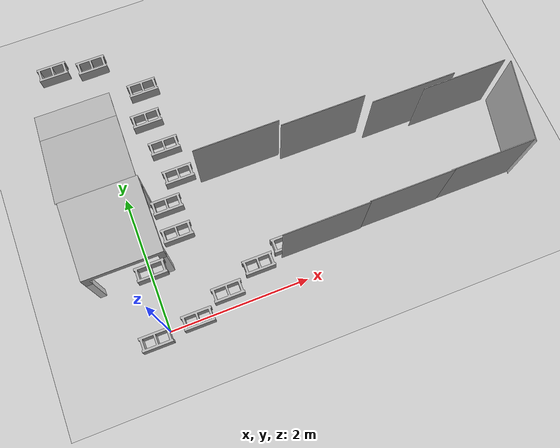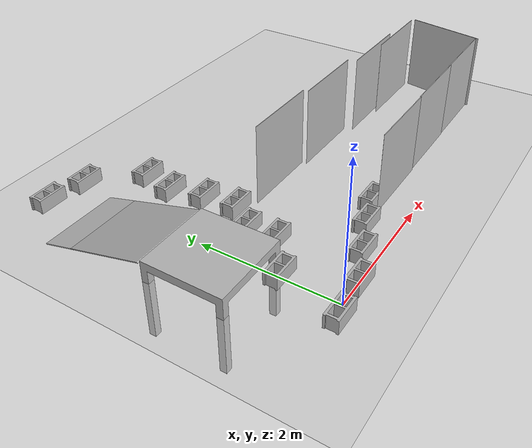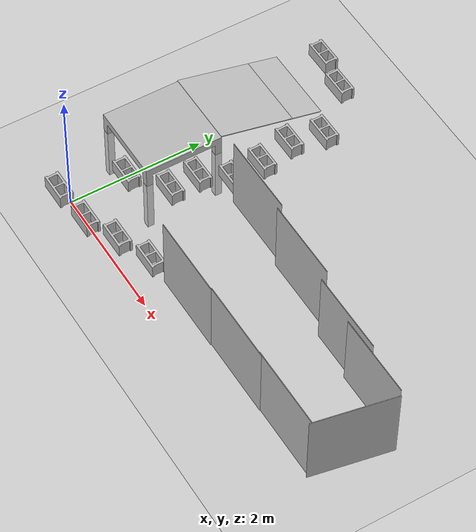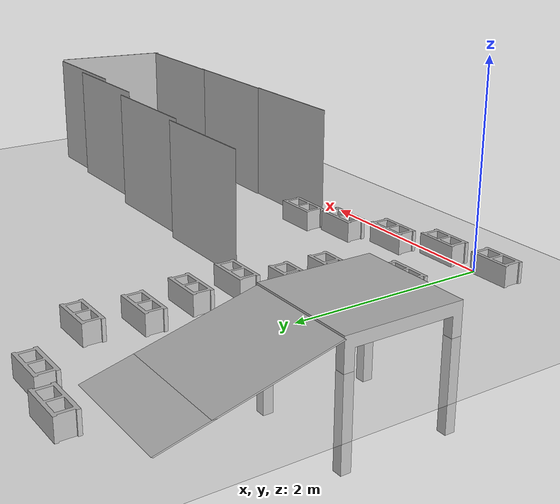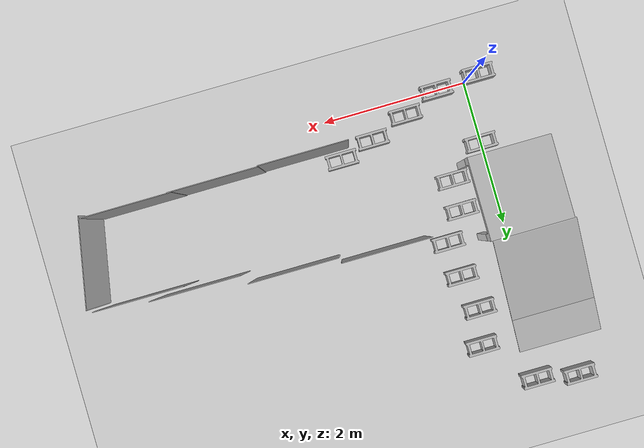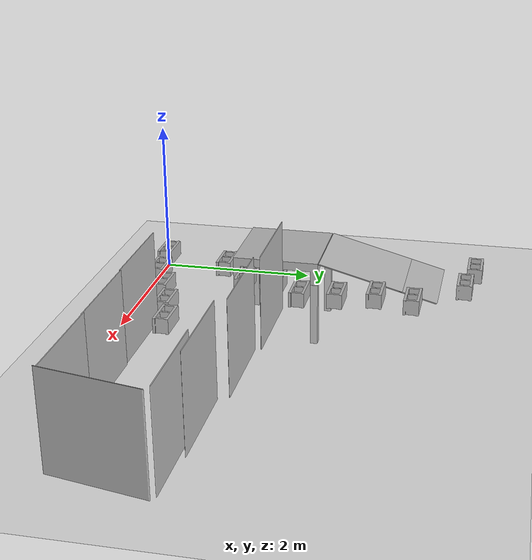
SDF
<sdf version="1.6">
 <world name="default">
  <model name="ground_plane">
   <static>1</static>
   <link name="link">
    <collision name="collision">
     <geometry><plane><normal>0 0 1</normal><size>100 100</size></plane></geometry>
     <surface><friction><ode><mu>100</mu><mu2>50</mu2></ode></friction></surface>
    </collision>
    <visual name="visual">
     <cast_shadows>0</cast_shadows>
     <geometry><plane><normal>0 0 1</normal><size>100 100</size></plane></geometry>
     <material>
      <script><uri>file://media/materials/scripts/gazebo.material</uri><name>Gazebo/Grey</name></script>
     </material>
    </visual>
   </link>
  </model>
  <model name="cinder_block_2">
   <link name="link">
    <inertial>
     <pose>0 0 0.1016 0 -0 0</pose>
     <mass>5</mass>
     <inertia>
      <ixx>0.028705</ixx>
      <ixy>0</ixy>
      <iyy>0.073708</iyy>
      <ixz>0</ixz>
      <iyz>0</iyz>
      <izz>0.06908</izz>
     </inertia>
    </inertial>
    <visual name="visual">
     <geometry><mesh><uri>model://cinder_block/meshes/cinder_block.dae</uri></mesh></geometry>
    </visual>
    <collision name="left">
     <pose>0 -0.08465 0.1016 0 -0 0</pose>
     <geometry><box><size>0.43495 0.0339 0.2032</size></box></geometry>
     <surface>
      <contact><ode><max_vel>0.1</max_vel><min_depth>0.001</min_depth></ode></contact>
      <friction><ode><mu>1</mu><mu2>1</mu2></ode></friction>
     </surface>
    </collision>
    <collision name="right">
     <pose>0 0.08465 0.1016 0 -0 0</pose>
     <geometry><box><size>0.43495 0.0339 0.2032</size></box></geometry>
     <surface>
      <contact><ode><max_vel>0.1</max_vel><min_depth>0.001</min_depth></ode></contact>
      <friction><ode><mu>1</mu><mu2>1</mu2></ode></friction>
     </surface>
    </collision>
    <collision name="front">
     <pose>0.18625 0 0.1016 0 -0 0</pose>
     <geometry><box><size>0.0339 0.1354 0.203</size></box></geometry>
     <surface>
      <contact><ode><max_vel>0.1</max_vel><min_depth>0.001</min_depth></ode></contact>
      <friction><ode><mu>1</mu><mu2>1</mu2></ode></friction>
     </surface>
    </collision>
    <collision name="middle">
     <pose>0 0 0.1016 0 -0 0</pose>
     <geometry><box><size>0.0339 0.1354 0.203</size></box></geometry>
     <surface>
      <contact><ode><max_vel>0.1</max_vel><min_depth>0.001</min_depth></ode></contact>
      <friction><ode><mu>1</mu><mu2>1</mu2></ode></friction>
     </surface>
    </collision>
    <collision name="back">
     <pose>-0.18625 0 0.1016 0 -0 0</pose>
     <geometry><box><size>0.0339 0.1354 0.203</size></box></geometry>
     <surface>
      <contact><ode><max_vel>0.1</max_vel><min_depth>0.001</min_depth></ode></contact>
      <friction><ode><mu>1</mu><mu2>1</mu2></ode></friction>
     </surface>
    </collision>
   </link>
   <pose>-0.201857 -0.063064 -6e-06 -1e-06 2.9e-05 0</pose>
  </model>
  <model name="cinder_block_3">
   <link name="link">
    <inertial>
     <pose>0 0 0.1016 0 -0 0</pose>
     <mass>5</mass>
     <inertia>
      <ixx>0.028705</ixx>
      <ixy>0</ixy>
      <iyy>0.073708</iyy>
      <ixz>0</ixz>
      <iyz>0</iyz>
      <izz>0.06908</izz>
     </inertia>
    </inertial>
    <visual name="visual">
     <geometry><mesh><uri>model://cinder_block/meshes/cinder_block.dae</uri></mesh></geometry>
    </visual>
    <collision name="left">
     <pose>0 -0.08465 0.1016 0 -0 0</pose>
     <geometry><box><size>0.43495 0.0339 0.2032</size></box></geometry>
     <surface>
      <contact><ode><max_vel>0.1</max_vel><min_depth>0.001</min_depth></ode></contact>
      <friction><ode><mu>1</mu><mu2>1</mu2></ode></friction>
     </surface>
    </collision>
    <collision name="right">
     <pose>0 0.08465 0.1016 0 -0 0</pose>
     <geometry><box><size>0.43495 0.0339 0.2032</size></box></geometry>
     <surface>
      <contact><ode><max_vel>0.1</max_vel><min_depth>0.001</min_depth></ode></contact>
      <friction><ode><mu>1</mu><mu2>1</mu2></ode></friction>
     </surface>
    </collision>
    <collision name="front">
     <pose>0.18625 0 0.1016 0 -0 0</pose>
     <geometry><box><size>0.0339 0.1354 0.203</size></box></geometry>
     <surface>
      <contact><ode><max_vel>0.1</max_vel><min_depth>0.001</min_depth></ode></contact>
      <friction><ode><mu>1</mu><mu2>1</mu2></ode></friction>
     </surface>
    </collision>
    <collision name="middle">
     <pose>0 0 0.1016 0 -0 0</pose>
     <geometry><box><size>0.0339 0.1354 0.203</size></box></geometry>
     <surface>
      <contact><ode><max_vel>0.1</max_vel><min_depth>0.001</min_depth></ode></contact>
      <friction><ode><mu>1</mu><mu2>1</mu2></ode></friction>
     </surface>
    </collision>
    <collision name="back">
     <pose>-0.18625 0 0.1016 0 -0 0</pose>
     <geometry><box><size>0.0339 0.1354 0.203</size></box></geometry>
     <surface>
      <contact><ode><max_vel>0.1</max_vel><min_depth>0.001</min_depth></ode></contact>
      <friction><ode><mu>1</mu><mu2>1</mu2></ode></friction>
     </surface>
    </collision>
   </link>
   <pose>0.409448 0.003088 -6e-06 -1e-06 2.9e-05 0</pose>
  </model>
  <model name="cinder_block_4">
   <link name="link">
    <inertial>
     <pose>0 0 0.1016 0 -0 0</pose>
     <mass>5</mass>
     <inertia>
      <ixx>0.028705</ixx>
      <ixy>0</ixy>
      <iyy>0.073708</iyy>
      <ixz>0</ixz>
      <iyz>0</iyz>
      <izz>0.06908</izz>
     </inertia>
    </inertial>
    <visual name="visual">
     <geometry><mesh><uri>model://cinder_block/meshes/cinder_block.dae</uri></mesh></geometry>
    </visual>
    <collision name="left">
     <pose>0 -0.08465 0.1016 0 -0 0</pose>
     <geometry><box><size>0.43495 0.0339 0.2032</size></box></geometry>
     <surface>
      <contact><ode><max_vel>0.1</max_vel><min_depth>0.001</min_depth></ode></contact>
      <friction><ode><mu>1</mu><mu2>1</mu2></ode></friction>
     </surface>
    </collision>
    <collision name="right">
     <pose>0 0.08465 0.1016 0 -0 0</pose>
     <geometry><box><size>0.43495 0.0339 0.2032</size></box></geometry>
     <surface>
      <contact><ode><max_vel>0.1</max_vel><min_depth>0.001</min_depth></ode></contact>
      <friction><ode><mu>1</mu><mu2>1</mu2></ode></friction>
     </surface>
    </collision>
    <collision name="front">
     <pose>0.18625 0 0.1016 0 -0 0</pose>
     <geometry><box><size>0.0339 0.1354 0.203</size></box></geometry>
     <surface>
      <contact><ode><max_vel>0.1</max_vel><min_depth>0.001</min_depth></ode></contact>
      <friction><ode><mu>1</mu><mu2>1</mu2></ode></friction>
     </surface>
    </collision>
    <collision name="middle">
     <pose>0 0 0.1016 0 -0 0</pose>
     <geometry><box><size>0.0339 0.1354 0.203</size></box></geometry>
     <surface>
      <contact><ode><max_vel>0.1</max_vel><min_depth>0.001</min_depth></ode></contact>
      <friction><ode><mu>1</mu><mu2>1</mu2></ode></friction>
     </surface>
    </collision>
    <collision name="back">
     <pose>-0.18625 0 0.1016 0 -0 0</pose>
     <geometry><box><size>0.0339 0.1354 0.203</size></box></geometry>
     <surface>
      <contact><ode><max_vel>0.1</max_vel><min_depth>0.001</min_depth></ode></contact>
      <friction><ode><mu>1</mu><mu2>1</mu2></ode></friction>
     </surface>
    </collision>
   </link>
   <pose>0.907571 0.210368 -6e-06 -1e-06 2.9e-05 0</pose>
  </model>
  <model name="cinder_block_5">
   <link name="link">
    <inertial>
     <pose>0 0 0.1016 0 -0 0</pose>
     <mass>5</mass>
     <inertia>
      <ixx>0.028705</ixx>
      <ixy>0</ixy>
      <iyy>0.073708</iyy>
      <ixz>0</ixz>
      <iyz>0</iyz>
      <izz>0.06908</izz>
     </inertia>
    </inertial>
    <visual name="visual">
     <geometry><mesh><uri>model://cinder_block/meshes/cinder_block.dae</uri></mesh></geometry>
    </visual>
    <collision name="left">
     <pose>0 -0.08465 0.1016 0 -0 0</pose>
     <geometry><box><size>0.43495 0.0339 0.2032</size></box></geometry>
     <surface>
      <contact><ode><max_vel>0.1</max_vel><min_depth>0.001</min_depth></ode></contact>
      <friction><ode><mu>1</mu><mu2>1</mu2></ode></friction>
     </surface>
    </collision>
    <collision name="right">
     <pose>0 0.08465 0.1016 0 -0 0</pose>
     <geometry><box><size>0.43495 0.0339 0.2032</size></box></geometry>
     <surface>
      <contact><ode><max_vel>0.1</max_vel><min_depth>0.001</min_depth></ode></contact>
      <friction><ode><mu>1</mu><mu2>1</mu2></ode></friction>
     </surface>
    </collision>
    <collision name="front">
     <pose>0.18625 0 0.1016 0 -0 0</pose>
     <geometry><box><size>0.0339 0.1354 0.203</size></box></geometry>
     <surface>
      <contact><ode><max_vel>0.1</max_vel><min_depth>0.001</min_depth></ode></contact>
      <friction><ode><mu>1</mu><mu2>1</mu2></ode></friction>
     </surface>
    </collision>
    <collision name="middle">
     <pose>0 0 0.1016 0 -0 0</pose>
     <geometry><box><size>0.0339 0.1354 0.203</size></box></geometry>
     <surface>
      <contact><ode><max_vel>0.1</max_vel><min_depth>0.001</min_depth></ode></contact>
      <friction><ode><mu>1</mu><mu2>1</mu2></ode></friction>
     </surface>
    </collision>
    <collision name="back">
     <pose>-0.18625 0 0.1016 0 -0 0</pose>
     <geometry><box><size>0.0339 0.1354 0.203</size></box></geometry>
     <surface>
      <contact><ode><max_vel>0.1</max_vel><min_depth>0.001</min_depth></ode></contact>
      <friction><ode><mu>1</mu><mu2>1</mu2></ode></friction>
     </surface>
    </collision>
   </link>
   <pose>1.43444 0.414241 -6e-06 -1e-06 2.9e-05 0</pose>
  </model>
  <model name="cinder_block_6">
   <link name="link">
    <inertial>
     <pose>0 0 0.1016 0 -0 0</pose>
     <mass>5</mass>
     <inertia>
      <ixx>0.028705</ixx>
      <ixy>0</ixy>
      <iyy>0.073708</iyy>
      <ixz>0</ixz>
      <iyz>0</iyz>
      <izz>0.06908</izz>
     </inertia>
    </inertial>
    <visual name="visual">
     <geometry><mesh><uri>model://cinder_block/meshes/cinder_block.dae</uri></mesh></geometry>
    </visual>
    <collision name="left">
     <pose>0 -0.08465 0.1016 0 -0 0</pose>
     <geometry><box><size>0.43495 0.0339 0.2032</size></box></geometry>
     <surface>
      <contact><ode><max_vel>0.1</max_vel><min_depth>0.001</min_depth></ode></contact>
      <friction><ode><mu>1</mu><mu2>1</mu2></ode></friction>
     </surface>
    </collision>
    <collision name="right">
     <pose>0 0.08465 0.1016 0 -0 0</pose>
     <geometry><box><size>0.43495 0.0339 0.2032</size></box></geometry>
     <surface>
      <contact><ode><max_vel>0.1</max_vel><min_depth>0.001</min_depth></ode></contact>
      <friction><ode><mu>1</mu><mu2>1</mu2></ode></friction>
     </surface>
    </collision>
    <collision name="front">
     <pose>0.18625 0 0.1016 0 -0 0</pose>
     <geometry><box><size>0.0339 0.1354 0.203</size></box></geometry>
     <surface>
      <contact><ode><max_vel>0.1</max_vel><min_depth>0.001</min_depth></ode></contact>
      <friction><ode><mu>1</mu><mu2>1</mu2></ode></friction>
     </surface>
    </collision>
    <collision name="middle">
     <pose>0 0 0.1016 0 -0 0</pose>
     <geometry><box><size>0.0339 0.1354 0.203</size></box></geometry>
     <surface>
      <contact><ode><max_vel>0.1</max_vel><min_depth>0.001</min_depth></ode></contact>
      <friction><ode><mu>1</mu><mu2>1</mu2></ode></friction>
     </surface>
    </collision>
    <collision name="back">
     <pose>-0.18625 0 0.1016 0 -0 0</pose>
     <geometry><box><size>0.0339 0.1354 0.203</size></box></geometry>
     <surface>
      <contact><ode><max_vel>0.1</max_vel><min_depth>0.001</min_depth></ode></contact>
      <friction><ode><mu>1</mu><mu2>1</mu2></ode></friction>
     </surface>
    </collision>
   </link>
   <pose>1.91072 0.564004 -6e-06 -1e-06 2.9e-05 0</pose>
  </model>
  <model name="nist_maze_wall_120">
   <static>1</static>
   <link name="nist_maze_wall_120_link">
    <collision name="collision">
     <geometry>
      <mesh><uri>model://nist_maze_wall_120/meshes/nist_maze_wall_120.dae</uri><scale>1 1 1</scale></mesh>
     </geometry>
    </collision>
    <visual name="visual">
     <geometry>
      <mesh><uri>model://nist_maze_wall_120/meshes/nist_maze_wall_120.dae</uri><scale>1 1 1</scale></mesh>
     </geometry>
    </visual>
   </link>
   <pose>2.37571 -0.184064 0 0 -0 0</pose>
  </model>
  <model name="nist_maze_wall_120_0">
   <static>1</static>
   <link name="nist_maze_wall_120_link">
    <collision name="collision">
     <geometry>
      <mesh><uri>model://nist_maze_wall_120/meshes/nist_maze_wall_120.dae</uri><scale>1 1 1</scale></mesh>
     </geometry>
    </collision>
    <visual name="visual">
     <geometry>
      <mesh><uri>model://nist_maze_wall_120/meshes/nist_maze_wall_120.dae</uri><scale>1 1 1</scale></mesh>
     </geometry>
    </visual>
   </link>
   <pose>3.56261 -0.171949 0 0 -0 0</pose>
  </model>
  <model name="nist_maze_wall_120_1">
   <static>1</static>
   <link name="nist_maze_wall_120_link">
    <collision name="collision">
     <geometry>
      <mesh><uri>model://nist_maze_wall_120/meshes/nist_maze_wall_120.dae</uri><scale>1 1 1</scale></mesh>
     </geometry>
    </collision>
    <visual name="visual">
     <geometry>
      <mesh><uri>model://nist_maze_wall_120/meshes/nist_maze_wall_120.dae</uri><scale>1 1 1</scale></mesh>
     </geometry>
    </visual>
   </link>
   <pose>4.69666 -0.164227 0 0 -0 0</pose>
  </model>
  <model name="nist_maze_wall_120_2">
   <static>1</static>
   <link name="nist_maze_wall_120_link">
    <collision name="collision">
     <geometry>
      <mesh><uri>model://nist_maze_wall_120/meshes/nist_maze_wall_120.dae</uri><scale>1 1 1</scale></mesh>
     </geometry>
    </collision>
    <visual name="visual">
     <geometry>
      <mesh><uri>model://nist_maze_wall_120/meshes/nist_maze_wall_120.dae</uri><scale>1 1 1</scale></mesh>
     </geometry>
    </visual>
   </link>
   <pose>6.00334 0.871408 0 0 -0 1.37919</pose>
  </model>
  <model name="nist_maze_wall_120_3">
   <static>1</static>
   <link name="nist_maze_wall_120_link">
    <collision name="collision">
     <geometry>
      <mesh><uri>model://nist_maze_wall_120/meshes/nist_maze_wall_120.dae</uri><scale>1 1 1</scale></mesh>
     </geometry>
    </collision>
    <visual name="visual">
     <geometry>
      <mesh><uri>model://nist_maze_wall_120/meshes/nist_maze_wall_120.dae</uri><scale>1 1 1</scale></mesh>
     </geometry>
    </visual>
   </link>
   <pose>4.86569 1.01272 0 0 -0 0</pose>
  </model>
  <model name="nist_maze_wall_120_4">
   <static>1</static>
   <link name="nist_maze_wall_120_link">
    <collision name="collision">
     <geometry>
      <mesh><uri>model://nist_maze_wall_120/meshes/nist_maze_wall_120.dae</uri><scale>1 1 1</scale></mesh>
     </geometry>
    </collision>
    <visual name="visual">
     <geometry>
      <mesh><uri>model://nist_maze_wall_120/meshes/nist_maze_wall_120.dae</uri><scale>1 1 1</scale></mesh>
     </geometry>
    </visual>
   </link>
   <pose>4.14425 1.08064 0 0 -0 0</pose>
  </model>
  <model name="nist_maze_wall_120_5">
   <static>1</static>
   <link name="nist_maze_wall_120_link">
    <collision name="collision">
     <geometry>
      <mesh><uri>model://nist_maze_wall_120/meshes/nist_maze_wall_120.dae</uri><scale>1 1 1</scale></mesh>
     </geometry>
    </collision>
    <visual name="visual">
     <geometry>
      <mesh><uri>model://nist_maze_wall_120/meshes/nist_maze_wall_120.dae</uri><scale>1 1 1</scale></mesh>
     </geometry>
    </visual>
   </link>
   <pose>2.8932 1.20612 0 0 -0 0</pose>
  </model>
  <model name="nist_maze_wall_120_6">
   <static>1</static>
   <link name="nist_maze_wall_120_link">
    <collision name="collision">
     <geometry>
      <mesh><uri>model://nist_maze_wall_120/meshes/nist_maze_wall_120.dae</uri><scale>1 1 1</scale></mesh>
     </geometry>
    </collision>
    <visual name="visual">
     <geometry>
      <mesh><uri>model://nist_maze_wall_120/meshes/nist_maze_wall_120.dae</uri><scale>1 1 1</scale></mesh>
     </geometry>
    </visual>
   </link>
   <pose>1.69448 1.28024 0 0 -0 0</pose>
  </model>
  <model name="nist_elevated_floor_120">
   <static>1</static>
   <link name="nist_elevated_floor_120">
    <collision name="collision">
     <geometry>
      <mesh><uri>model://nist_elevated_floor_120/meshes/nist_elevated_floor_120.dae</uri><scale>1 1 1</scale></mesh>
     </geometry>
    </collision>
    <visual name="visual">
     <geometry>
      <mesh><uri>model://nist_elevated_floor_120/meshes/nist_elevated_floor_120.dae</uri><scale>1 1 1</scale></mesh>
     </geometry>
    </visual>
   </link>
   <pose>-0.307594 1.59992 -0.889932 0 -0 0</pose>
  </model>
  <model name="cinder_block_9">
   <link name="link">
    <inertial>
     <pose>0 0 0.1016 0 -0 0</pose>
     <mass>5</mass>
     <inertia>
      <ixx>0.028705</ixx>
      <ixy>0</ixy>
      <iyy>0.073708</iyy>
      <ixz>0</ixz>
      <iyz>0</iyz>
      <izz>0.06908</izz>
     </inertia>
    </inertial>
    <visual name="visual">
     <geometry><mesh><uri>model://cinder_block/meshes/cinder_block.dae</uri></mesh></geometry>
    </visual>
    <collision name="left">
     <pose>0 -0.08465 0.1016 0 -0 0</pose>
     <geometry><box><size>0.43495 0.0339 0.2032</size></box></geometry>
     <surface>
      <contact><ode><max_vel>0.1</max_vel><min_depth>0.001</min_depth></ode></contact>
      <friction><ode><mu>1</mu><mu2>1</mu2></ode></friction>
     </surface>
    </collision>
    <collision name="right">
     <pose>0 0.08465 0.1016 0 -0 0</pose>
     <geometry><box><size>0.43495 0.0339 0.2032</size></box></geometry>
     <surface>
      <contact><ode><max_vel>0.1</max_vel><min_depth>0.001</min_depth></ode></contact>
      <friction><ode><mu>1</mu><mu2>1</mu2></ode></friction>
     </surface>
    </collision>
    <collision name="front">
     <pose>0.18625 0 0.1016 0 -0 0</pose>
     <geometry><box><size>0.0339 0.1354 0.203</size></box></geometry>
     <surface>
      <contact><ode><max_vel>0.1</max_vel><min_depth>0.001</min_depth></ode></contact>
      <friction><ode><mu>1</mu><mu2>1</mu2></ode></friction>
     </surface>
    </collision>
    <collision name="middle">
     <pose>0 0 0.1016 0 -0 0</pose>
     <geometry><box><size>0.0339 0.1354 0.203</size></box></geometry>
     <surface>
      <contact><ode><max_vel>0.1</max_vel><min_depth>0.001</min_depth></ode></contact>
      <friction><ode><mu>1</mu><mu2>1</mu2></ode></friction>
     </surface>
    </collision>
    <collision name="back">
     <pose>-0.18625 0 0.1016 0 -0 0</pose>
     <geometry><box><size>0.0339 0.1354 0.203</size></box></geometry>
     <surface>
      <contact><ode><max_vel>0.1</max_vel><min_depth>0.001</min_depth></ode></contact>
      <friction><ode><mu>1</mu><mu2>1</mu2></ode></friction>
     </surface>
    </collision>
   </link>
   <pose>0.530702 1.23913 -6e-06 -1e-06 2.8e-05 -0</pose>
  </model>
  <model name="cinder_block_10">
   <link name="link">
    <inertial>
     <pose>0 0 0.1016 0 -0 0</pose>
     <mass>5</mass>
     <inertia>
      <ixx>0.028705</ixx>
      <ixy>0</ixy>
      <iyy>0.073708</iyy>
      <ixz>0</ixz>
      <iyz>0</iyz>
      <izz>0.06908</izz>
     </inertia>
    </inertial>
    <visual name="visual">
     <geometry><mesh><uri>model://cinder_block/meshes/cinder_block.dae</uri></mesh></geometry>
    </visual>
    <collision name="left">
     <pose>0 -0.08465 0.1016 0 -0 0</pose>
     <geometry><box><size>0.43495 0.0339 0.2032</size></box></geometry>
     <surface>
      <contact><ode><max_vel>0.1</max_vel><min_depth>0.001</min_depth></ode></contact>
      <friction><ode><mu>1</mu><mu2>1</mu2></ode></friction>
     </surface>
    </collision>
    <collision name="right">
     <pose>0 0.08465 0.1016 0 -0 0</pose>
     <geometry><box><size>0.43495 0.0339 0.2032</size></box></geometry>
     <surface>
      <contact><ode><max_vel>0.1</max_vel><min_depth>0.001</min_depth></ode></contact>
      <friction><ode><mu>1</mu><mu2>1</mu2></ode></friction>
     </surface>
    </collision>
    <collision name="front">
     <pose>0.18625 0 0.1016 0 -0 0</pose>
     <geometry><box><size>0.0339 0.1354 0.203</size></box></geometry>
     <surface>
      <contact><ode><max_vel>0.1</max_vel><min_depth>0.001</min_depth></ode></contact>
      <friction><ode><mu>1</mu><mu2>1</mu2></ode></friction>
     </surface>
    </collision>
    <collision name="middle">
     <pose>0 0 0.1016 0 -0 0</pose>
     <geometry><box><size>0.0339 0.1354 0.203</size></box></geometry>
     <surface>
      <contact><ode><max_vel>0.1</max_vel><min_depth>0.001</min_depth></ode></contact>
      <friction><ode><mu>1</mu><mu2>1</mu2></ode></friction>
     </surface>
    </collision>
    <collision name="back">
     <pose>-0.18625 0 0.1016 0 -0 0</pose>
     <geometry><box><size>0.0339 0.1354 0.203</size></box></geometry>
     <surface>
      <contact><ode><max_vel>0.1</max_vel><min_depth>0.001</min_depth></ode></contact>
      <friction><ode><mu>1</mu><mu2>1</mu2></ode></friction>
     </surface>
    </collision>
   </link>
   <pose>0.525258 1.67182 -6e-06 -1e-06 2.8e-05 -0</pose>
  </model>
  <model name="cinder_block_11">
   <link name="link">
    <inertial>
     <pose>0 0 0.1016 0 -0 0</pose>
     <mass>5</mass>
     <inertia>
      <ixx>0.028705</ixx>
      <ixy>0</ixy>
      <iyy>0.073708</iyy>
      <ixz>0</ixz>
      <iyz>0</iyz>
      <izz>0.06908</izz>
     </inertia>
    </inertial>
    <visual name="visual">
     <geometry><mesh><uri>model://cinder_block/meshes/cinder_block.dae</uri></mesh></geometry>
    </visual>
    <collision name="left">
     <pose>0 -0.08465 0.1016 0 -0 0</pose>
     <geometry><box><size>0.43495 0.0339 0.2032</size></box></geometry>
     <surface>
      <contact><ode><max_vel>0.1</max_vel><min_depth>0.001</min_depth></ode></contact>
      <friction><ode><mu>1</mu><mu2>1</mu2></ode></friction>
     </surface>
    </collision>
    <collision name="right">
     <pose>0 0.08465 0.1016 0 -0 0</pose>
     <geometry><box><size>0.43495 0.0339 0.2032</size></box></geometry>
     <surface>
      <contact><ode><max_vel>0.1</max_vel><min_depth>0.001</min_depth></ode></contact>
      <friction><ode><mu>1</mu><mu2>1</mu2></ode></friction>
     </surface>
    </collision>
    <collision name="front">
     <pose>0.18625 0 0.1016 0 -0 0</pose>
     <geometry><box><size>0.0339 0.1354 0.203</size></box></geometry>
     <surface>
      <contact><ode><max_vel>0.1</max_vel><min_depth>0.001</min_depth></ode></contact>
      <friction><ode><mu>1</mu><mu2>1</mu2></ode></friction>
     </surface>
    </collision>
    <collision name="middle">
     <pose>0 0 0.1016 0 -0 0</pose>
     <geometry><box><size>0.0339 0.1354 0.203</size></box></geometry>
     <surface>
      <contact><ode><max_vel>0.1</max_vel><min_depth>0.001</min_depth></ode></contact>
      <friction><ode><mu>1</mu><mu2>1</mu2></ode></friction>
     </surface>
    </collision>
    <collision name="back">
     <pose>-0.18625 0 0.1016 0 -0 0</pose>
     <geometry><box><size>0.0339 0.1354 0.203</size></box></geometry>
     <surface>
      <contact><ode><max_vel>0.1</max_vel><min_depth>0.001</min_depth></ode></contact>
      <friction><ode><mu>1</mu><mu2>1</mu2></ode></friction>
     </surface>
    </collision>
   </link>
   <pose>0.020907 0.854106 -6e-06 -1e-06 2.8e-05 -0</pose>
  </model>
  <model name="nist_simple_ramp_120">
   <static>1</static>
   <link name="nist_simple_ramp_120_link">
    <collision name="collision">
     <geometry>
      <mesh><uri>model://nist_simple_ramp_120/meshes/nist_simple_ramp_120.dae</uri><scale>1 1 1</scale></mesh>
     </geometry>
    </collision>
    <visual name="visual">
     <geometry>
      <mesh><uri>model://nist_simple_ramp_120/meshes/nist_simple_ramp_120.dae</uri><scale>1 1 1</scale></mesh>
     </geometry>
    </visual>
   </link>
   <pose>-0.331889 2.48219 -0.221987 -1.04959 0 0</pose>
  </model>
  <model name="cinder_block_15">
   <link name="link">
    <inertial>
     <pose>0 0 0.1016 0 -0 0</pose>
     <mass>5</mass>
     <inertia>
      <ixx>0.028705</ixx>
      <ixy>0</ixy>
      <iyy>0.073708</iyy>
      <ixz>0</ixz>
      <iyz>0</iyz>
      <izz>0.06908</izz>
     </inertia>
    </inertial>
    <visual name="visual">
     <geometry><mesh><uri>model://cinder_block/meshes/cinder_block.dae</uri></mesh></geometry>
    </visual>
    <collision name="left">
     <pose>0 -0.08465 0.1016 0 -0 0</pose>
     <geometry><box><size>0.43495 0.0339 0.2032</size></box></geometry>
     <surface>
      <contact><ode><max_vel>0.1</max_vel><min_depth>0.001</min_depth></ode></contact>
      <friction><ode><mu>1</mu><mu2>1</mu2></ode></friction>
     </surface>
    </collision>
    <collision name="right">
     <pose>0 0.08465 0.1016 0 -0 0</pose>
     <geometry><box><size>0.43495 0.0339 0.2032</size></box></geometry>
     <surface>
      <contact><ode><max_vel>0.1</max_vel><min_depth>0.001</min_depth></ode></contact>
      <friction><ode><mu>1</mu><mu2>1</mu2></ode></friction>
     </surface>
    </collision>
    <collision name="front">
     <pose>0.18625 0 0.1016 0 -0 0</pose>
     <geometry><box><size>0.0339 0.1354 0.203</size></box></geometry>
     <surface>
      <contact><ode><max_vel>0.1</max_vel><min_depth>0.001</min_depth></ode></contact>
      <friction><ode><mu>1</mu><mu2>1</mu2></ode></friction>
     </surface>
    </collision>
    <collision name="middle">
     <pose>0 0 0.1016 0 -0 0</pose>
     <geometry><box><size>0.0339 0.1354 0.203</size></box></geometry>
     <surface>
      <contact><ode><max_vel>0.1</max_vel><min_depth>0.001</min_depth></ode></contact>
      <friction><ode><mu>1</mu><mu2>1</mu2></ode></friction>
     </surface>
    </collision>
    <collision name="back">
     <pose>-0.18625 0 0.1016 0 -0 0</pose>
     <geometry><box><size>0.0339 0.1354 0.203</size></box></geometry>
     <surface>
      <contact><ode><max_vel>0.1</max_vel><min_depth>0.001</min_depth></ode></contact>
      <friction><ode><mu>1</mu><mu2>1</mu2></ode></friction>
     </surface>
    </collision>
   </link>
   <pose>0.824846 2.04753 0 0 -0 0</pose>
  </model>
  <model name="cinder_block_16">
   <link name="link">
    <inertial>
     <pose>0 0 0.1016 0 -0 0</pose>
     <mass>5</mass>
     <inertia>
      <ixx>0.028705</ixx>
      <ixy>0</ixy>
      <iyy>0.073708</iyy>
      <ixz>0</ixz>
      <iyz>0</iyz>
      <izz>0.06908</izz>
     </inertia>
    </inertial>
    <visual name="visual">
     <geometry><mesh><uri>model://cinder_block/meshes/cinder_block.dae</uri></mesh></geometry>
    </visual>
    <collision name="left">
     <pose>0 -0.08465 0.1016 0 -0 0</pose>
     <geometry><box><size>0.43495 0.0339 0.2032</size></box></geometry>
     <surface>
      <contact><ode><max_vel>0.1</max_vel><min_depth>0.001</min_depth></ode></contact>
      <friction><ode><mu>1</mu><mu2>1</mu2></ode></friction>
     </surface>
    </collision>
    <collision name="right">
     <pose>0 0.08465 0.1016 0 -0 0</pose>
     <geometry><box><size>0.43495 0.0339 0.2032</size></box></geometry>
     <surface>
      <contact><ode><max_vel>0.1</max_vel><min_depth>0.001</min_depth></ode></contact>
      <friction><ode><mu>1</mu><mu2>1</mu2></ode></friction>
     </surface>
    </collision>
    <collision name="front">
     <pose>0.18625 0 0.1016 0 -0 0</pose>
     <geometry><box><size>0.0339 0.1354 0.203</size></box></geometry>
     <surface>
      <contact><ode><max_vel>0.1</max_vel><min_depth>0.001</min_depth></ode></contact>
      <friction><ode><mu>1</mu><mu2>1</mu2></ode></friction>
     </surface>
    </collision>
    <collision name="middle">
     <pose>0 0 0.1016 0 -0 0</pose>
     <geometry><box><size>0.0339 0.1354 0.203</size></box></geometry>
     <surface>
      <contact><ode><max_vel>0.1</max_vel><min_depth>0.001</min_depth></ode></contact>
      <friction><ode><mu>1</mu><mu2>1</mu2></ode></friction>
     </surface>
    </collision>
    <collision name="back">
     <pose>-0.18625 0 0.1016 0 -0 0</pose>
     <geometry><box><size>0.0339 0.1354 0.203</size></box></geometry>
     <surface>
      <contact><ode><max_vel>0.1</max_vel><min_depth>0.001</min_depth></ode></contact>
      <friction><ode><mu>1</mu><mu2>1</mu2></ode></friction>
     </surface>
    </collision>
   </link>
   <pose>0.773398 2.53608 0 0 -0 0</pose>
  </model>
  <model name="cinder_block_17">
   <link name="link">
    <inertial>
     <pose>0 0 0.1016 0 -0 0</pose>
     <mass>5</mass>
     <inertia>
      <ixx>0.028705</ixx>
      <ixy>0</ixy>
      <iyy>0.073708</iyy>
      <ixz>0</ixz>
      <iyz>0</iyz>
      <izz>0.06908</izz>
     </inertia>
    </inertial>
    <visual name="visual">
     <geometry><mesh><uri>model://cinder_block/meshes/cinder_block.dae</uri></mesh></geometry>
    </visual>
    <collision name="left">
     <pose>0 -0.08465 0.1016 0 -0 0</pose>
     <geometry><box><size>0.43495 0.0339 0.2032</size></box></geometry>
     <surface>
      <contact><ode><max_vel>0.1</max_vel><min_depth>0.001</min_depth></ode></contact>
      <friction><ode><mu>1</mu><mu2>1</mu2></ode></friction>
     </surface>
    </collision>
    <collision name="right">
     <pose>0 0.08465 0.1016 0 -0 0</pose>
     <geometry><box><size>0.43495 0.0339 0.2032</size></box></geometry>
     <surface>
      <contact><ode><max_vel>0.1</max_vel><min_depth>0.001</min_depth></ode></contact>
      <friction><ode><mu>1</mu><mu2>1</mu2></ode></friction>
     </surface>
    </collision>
    <collision name="front">
     <pose>0.18625 0 0.1016 0 -0 0</pose>
     <geometry><box><size>0.0339 0.1354 0.203</size></box></geometry>
     <surface>
      <contact><ode><max_vel>0.1</max_vel><min_depth>0.001</min_depth></ode></contact>
      <friction><ode><mu>1</mu><mu2>1</mu2></ode></friction>
     </surface>
    </collision>
    <collision name="middle">
     <pose>0 0 0.1016 0 -0 0</pose>
     <geometry><box><size>0.0339 0.1354 0.203</size></box></geometry>
     <surface>
      <contact><ode><max_vel>0.1</max_vel><min_depth>0.001</min_depth></ode></contact>
      <friction><ode><mu>1</mu><mu2>1</mu2></ode></friction>
     </surface>
    </collision>
    <collision name="back">
     <pose>-0.18625 0 0.1016 0 -0 0</pose>
     <geometry><box><size>0.0339 0.1354 0.203</size></box></geometry>
     <surface>
      <contact><ode><max_vel>0.1</max_vel><min_depth>0.001</min_depth></ode></contact>
      <friction><ode><mu>1</mu><mu2>1</mu2></ode></friction>
     </surface>
    </collision>
   </link>
   <pose>0.662753 3.03755 0 0 -0 0</pose>
  </model>
  <model name="cinder_block_18">
   <link name="link">
    <inertial>
     <pose>0 0 0.1016 0 -0 0</pose>
     <mass>5</mass>
     <inertia>
      <ixx>0.028705</ixx>
      <ixy>0</ixy>
      <iyy>0.073708</iyy>
      <ixz>0</ixz>
      <iyz>0</iyz>
      <izz>0.06908</izz>
     </inertia>
    </inertial>
    <visual name="visual">
     <geometry><mesh><uri>model://cinder_block/meshes/cinder_block.dae</uri></mesh></geometry>
    </visual>
    <collision name="left">
     <pose>0 -0.08465 0.1016 0 -0 0</pose>
     <geometry><box><size>0.43495 0.0339 0.2032</size></box></geometry>
     <surface>
      <contact><ode><max_vel>0.1</max_vel><min_depth>0.001</min_depth></ode></contact>
      <friction><ode><mu>1</mu><mu2>1</mu2></ode></friction>
     </surface>
    </collision>
    <collision name="right">
     <pose>0 0.08465 0.1016 0 -0 0</pose>
     <geometry><box><size>0.43495 0.0339 0.2032</size></box></geometry>
     <surface>
      <contact><ode><max_vel>0.1</max_vel><min_depth>0.001</min_depth></ode></contact>
      <friction><ode><mu>1</mu><mu2>1</mu2></ode></friction>
     </surface>
    </collision>
    <collision name="front">
     <pose>0.18625 0 0.1016 0 -0 0</pose>
     <geometry><box><size>0.0339 0.1354 0.203</size></box></geometry>
     <surface>
      <contact><ode><max_vel>0.1</max_vel><min_depth>0.001</min_depth></ode></contact>
      <friction><ode><mu>1</mu><mu2>1</mu2></ode></friction>
     </surface>
    </collision>
    <collision name="middle">
     <pose>0 0 0.1016 0 -0 0</pose>
     <geometry><box><size>0.0339 0.1354 0.203</size></box></geometry>
     <surface>
      <contact><ode><max_vel>0.1</max_vel><min_depth>0.001</min_depth></ode></contact>
      <friction><ode><mu>1</mu><mu2>1</mu2></ode></friction>
     </surface>
    </collision>
    <collision name="back">
     <pose>-0.18625 0 0.1016 0 -0 0</pose>
     <geometry><box><size>0.0339 0.1354 0.203</size></box></geometry>
     <surface>
      <contact><ode><max_vel>0.1</max_vel><min_depth>0.001</min_depth></ode></contact>
      <friction><ode><mu>1</mu><mu2>1</mu2></ode></friction>
     </surface>
    </collision>
   </link>
   <pose>0.165675 4.16714 0 0 -0 0</pose>
  </model>
  <model name="cinder_block_19">
   <link name="link">
    <inertial>
     <pose>0 0 0.1016 0 -0 0</pose>
     <mass>5</mass>
     <inertia>
      <ixx>0.028705</ixx>
      <ixy>0</ixy>
      <iyy>0.073708</iyy>
      <ixz>0</ixz>
      <iyz>0</iyz>
      <izz>0.06908</izz>
     </inertia>
    </inertial>
    <visual name="visual">
     <geometry><mesh><uri>model://cinder_block/meshes/cinder_block.dae</uri></mesh></geometry>
    </visual>
    <collision name="left">
     <pose>0 -0.08465 0.1016 0 -0 0</pose>
     <geometry><box><size>0.43495 0.0339 0.2032</size></box></geometry>
     <surface>
      <contact><ode><max_vel>0.1</max_vel><min_depth>0.001</min_depth></ode></contact>
      <friction><ode><mu>1</mu><mu2>1</mu2></ode></friction>
     </surface>
    </collision>
    <collision name="right">
     <pose>0 0.08465 0.1016 0 -0 0</pose>
     <geometry><box><size>0.43495 0.0339 0.2032</size></box></geometry>
     <surface>
      <contact><ode><max_vel>0.1</max_vel><min_depth>0.001</min_depth></ode></contact>
      <friction><ode><mu>1</mu><mu2>1</mu2></ode></friction>
     </surface>
    </collision>
    <collision name="front">
     <pose>0.18625 0 0.1016 0 -0 0</pose>
     <geometry><box><size>0.0339 0.1354 0.203</size></box></geometry>
     <surface>
      <contact><ode><max_vel>0.1</max_vel><min_depth>0.001</min_depth></ode></contact>
      <friction><ode><mu>1</mu><mu2>1</mu2></ode></friction>
     </surface>
    </collision>
    <collision name="middle">
     <pose>0 0 0.1016 0 -0 0</pose>
     <geometry><box><size>0.0339 0.1354 0.203</size></box></geometry>
     <surface>
      <contact><ode><max_vel>0.1</max_vel><min_depth>0.001</min_depth></ode></contact>
      <friction><ode><mu>1</mu><mu2>1</mu2></ode></friction>
     </surface>
    </collision>
    <collision name="back">
     <pose>-0.18625 0 0.1016 0 -0 0</pose>
     <geometry><box><size>0.0339 0.1354 0.203</size></box></geometry>
     <surface>
      <contact><ode><max_vel>0.1</max_vel><min_depth>0.001</min_depth></ode></contact>
      <friction><ode><mu>1</mu><mu2>1</mu2></ode></friction>
     </surface>
    </collision>
   </link>
   <pose>0.766513 3.53391 0 0 -0 0</pose>
  </model>
  <model name="cinder_block_20">
   <link name="link">
    <inertial>
     <pose>0 0 0.1016 0 -0 0</pose>
     <mass>5</mass>
     <inertia>
      <ixx>0.028705</ixx>
      <ixy>0</ixy>
      <iyy>0.073708</iyy>
      <ixz>0</ixz>
      <iyz>0</iyz>
      <izz>0.06908</izz>
     </inertia>
    </inertial>
    <visual name="visual">
     <geometry><mesh><uri>model://cinder_block/meshes/cinder_block.dae</uri></mesh></geometry>
    </visual>
    <collision name="left">
     <pose>0 -0.08465 0.1016 0 -0 0</pose>
     <geometry><box><size>0.43495 0.0339 0.2032</size></box></geometry>
     <surface>
      <contact><ode><max_vel>0.1</max_vel><min_depth>0.001</min_depth></ode></contact>
      <friction><ode><mu>1</mu><mu2>1</mu2></ode></friction>
     </surface>
    </collision>
    <collision name="right">
     <pose>0 0.08465 0.1016 0 -0 0</pose>
     <geometry><box><size>0.43495 0.0339 0.2032</size></box></geometry>
     <surface>
      <contact><ode><max_vel>0.1</max_vel><min_depth>0.001</min_depth></ode></contact>
      <friction><ode><mu>1</mu><mu2>1</mu2></ode></friction>
     </surface>
    </collision>
    <collision name="front">
     <pose>0.18625 0 0.1016 0 -0 0</pose>
     <geometry><box><size>0.0339 0.1354 0.203</size></box></geometry>
     <surface>
      <contact><ode><max_vel>0.1</max_vel><min_depth>0.001</min_depth></ode></contact>
      <friction><ode><mu>1</mu><mu2>1</mu2></ode></friction>
     </surface>
    </collision>
    <collision name="middle">
     <pose>0 0 0.1016 0 -0 0</pose>
     <geometry><box><size>0.0339 0.1354 0.203</size></box></geometry>
     <surface>
      <contact><ode><max_vel>0.1</max_vel><min_depth>0.001</min_depth></ode></contact>
      <friction><ode><mu>1</mu><mu2>1</mu2></ode></friction>
     </surface>
    </collision>
    <collision name="back">
     <pose>-0.18625 0 0.1016 0 -0 0</pose>
     <geometry><box><size>0.0339 0.1354 0.203</size></box></geometry>
     <surface>
      <contact><ode><max_vel>0.1</max_vel><min_depth>0.001</min_depth></ode></contact>
      <friction><ode><mu>1</mu><mu2>1</mu2></ode></friction>
     </surface>
    </collision>
   </link>
   <pose>-0.410244 4.26788 0 0 -0 0</pose>
  </model>
 </world>
</sdf>
